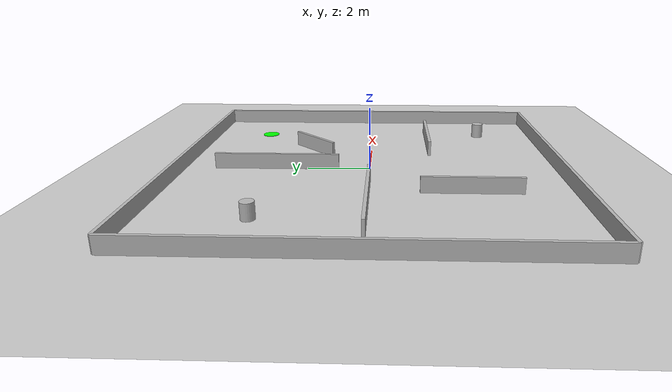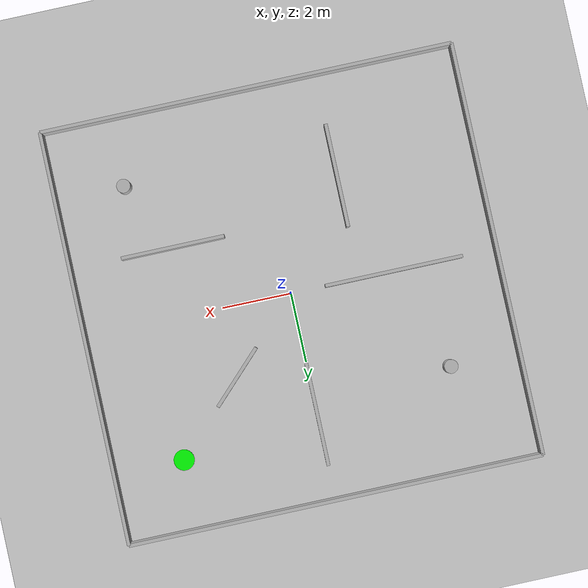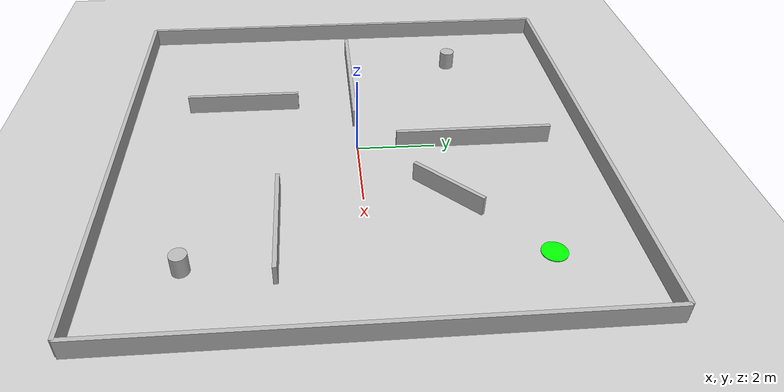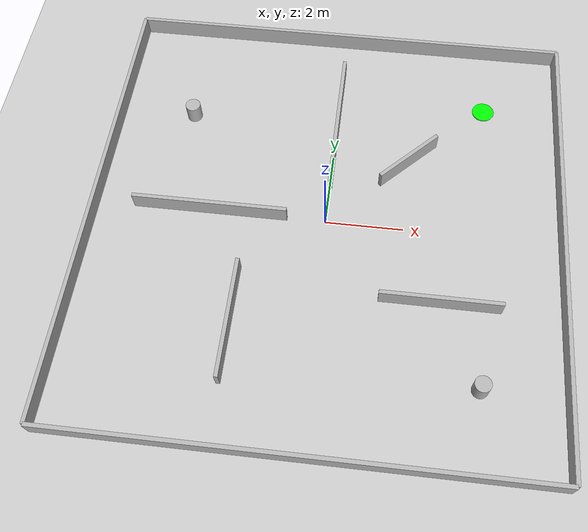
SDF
<?xml version="1.0" ?>
<sdf version="1.6">
  <world name="medium_maze">
    <include><uri>model://ground_plane</uri></include>
    <include><uri>model://sun</uri></include>

    <!-- Outer walls 12x12 -->
    <model name="wall_n"><static>true</static><pose>0 6 0.25 0 0 0</pose>
      <link name="l"><collision name="c"><geometry><box><size>12 0.1 0.5</size></box></geometry></collision>
      <visual name="v"><geometry><box><size>12 0.1 0.5</size></box></geometry></visual></link></model>
    <model name="wall_s"><static>true</static><pose>0 -6 0.25 0 0 0</pose>
      <link name="l"><collision name="c"><geometry><box><size>12 0.1 0.5</size></box></geometry></collision>
      <visual name="v"><geometry><box><size>12 0.1 0.5</size></box></geometry></visual></link></model>
    <model name="wall_e"><static>true</static><pose>6 0 0.25 0 0 1.5708</pose>
      <link name="l"><collision name="c"><geometry><box><size>12 0.1 0.5</size></box></geometry></collision>
      <visual name="v"><geometry><box><size>12 0.1 0.5</size></box></geometry></visual></link></model>
    <model name="wall_w"><static>true</static><pose>-6 0 0.25 0 0 1.5708</pose>
      <link name="l"><collision name="c"><geometry><box><size>12 0.1 0.5</size></box></geometry></collision>
      <visual name="v"><geometry><box><size>12 0.1 0.5</size></box></geometry></visual></link></model>

    <!-- Internal walls forming corridors -->
    <model name="iw1"><static>true</static><pose>-3 0 0.25 0 0 0</pose>
      <link name="l"><collision name="c"><geometry><box><size>4 0.1 0.5</size></box></geometry></collision>
      <visual name="v"><geometry><box><size>4 0.1 0.5</size></box></geometry></visual></link></model>
    <model name="iw2"><static>true</static><pose>0 3 0.25 0 0 1.5708</pose>
      <link name="l"><collision name="c"><geometry><box><size>4 0.1 0.5</size></box></geometry></collision>
      <visual name="v"><geometry><box><size>4 0.1 0.5</size></box></geometry></visual></link></model>
    <model name="iw3"><static>true</static><pose>3 -2 0.25 0 0 0</pose>
      <link name="l"><collision name="c"><geometry><box><size>3 0.1 0.5</size></box></geometry></collision>
      <visual name="v"><geometry><box><size>3 0.1 0.5</size></box></geometry></visual></link></model>
    <model name="iw4"><static>true</static><pose>-2 -3 0.25 0 0 1.5708</pose>
      <link name="l"><collision name="c"><geometry><box><size>3 0.1 0.5</size></box></geometry></collision>
      <visual name="v"><geometry><box><size>3 0.1 0.5</size></box></geometry></visual></link></model>
    <model name="iw5"><static>true</static><pose>2 2 0.25 0 0 0.7854</pose>
      <link name="l"><collision name="c"><geometry><box><size>2 0.1 0.5</size></box></geometry></collision>
      <visual name="v"><geometry><box><size>2 0.1 0.5</size></box></geometry></visual></link></model>

    <!-- Pillars -->
    <model name="p1"><static>true</static><pose>-4 3 0.25 0 0 0</pose>
      <link name="l"><collision name="c"><geometry><cylinder><radius>0.2</radius><length>0.5</length></cylinder></geometry></collision>
      <visual name="v"><geometry><cylinder><radius>0.2</radius><length>0.5</length></cylinder></geometry></visual></link></model>
    <model name="p2"><static>true</static><pose>4 -4 0.25 0 0 0</pose>
      <link name="l"><collision name="c"><geometry><cylinder><radius>0.2</radius><length>0.5</length></cylinder></geometry></collision>
      <visual name="v"><geometry><cylinder><radius>0.2</radius><length>0.5</length></cylinder></geometry></visual></link></model>

    <model name="goal"><static>true</static><pose>4 4 0.01 0 0 0</pose>
      <link name="l"><visual name="v"><geometry><cylinder><radius>0.3</radius><length>0.02</length></cylinder></geometry>
      <material><ambient>0 1 0 1</ambient><diffuse>0 1 0 1</diffuse></material></visual></link></model>
  </world>
</sdf>
